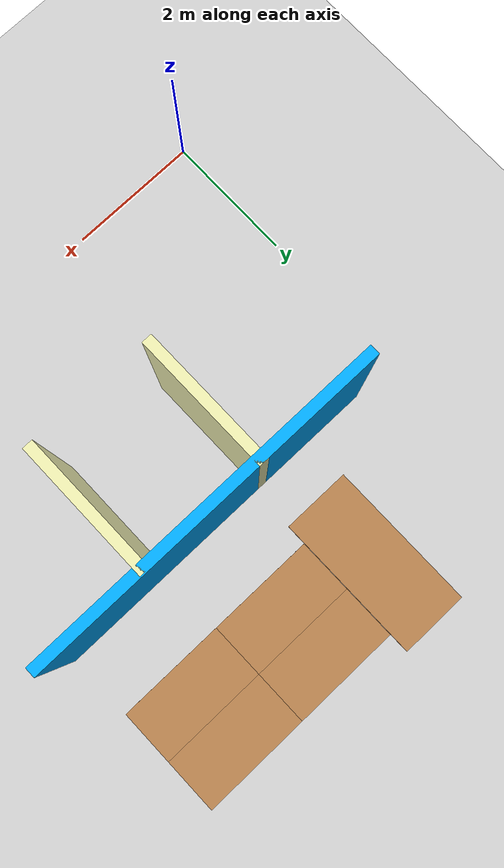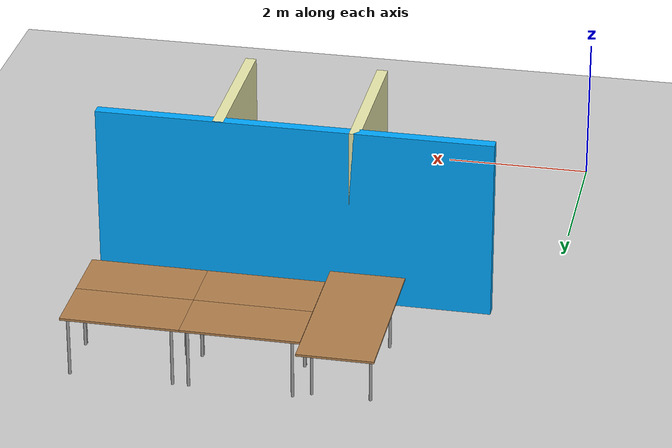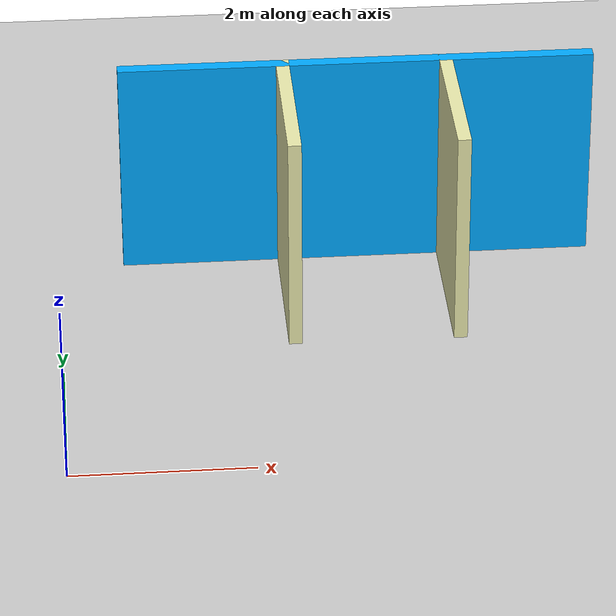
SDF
<sdf version="1.6">
 <world name="default">
  <model name="ground_plane">
   <static>1</static>
   <link name="link">
    <collision name="collision">
     <geometry><plane><normal>0 0 1</normal><size>100 100</size></plane></geometry>
     <surface><friction><ode><mu>100</mu><mu2>50</mu2></ode></friction></surface>
    </collision>
    <visual name="visual">
     <cast_shadows>0</cast_shadows>
     <geometry><plane><normal>0 0 1</normal><size>100 100</size></plane></geometry>
     <material>
      <script><uri>file://media/materials/scripts/gazebo.material</uri><name>Gazebo/Grey</name></script>
     </material>
    </visual>
   </link>
  </model>
  <model name="Building">
   <link name="Wall_123">
    <collision name="Wall_123_Collision">
     <geometry><box><size>2 0.15 2.5</size></box></geometry>
     <pose>0 0 1.25 0 -0 0</pose>
    </collision>
    <visual name="Wall_123_Visual">
     <pose>0 0 1.25 0 -0 0</pose>
     <geometry><box><size>2 0.15 2.5</size></box></geometry>
     <material>
      <script><uri>file://media/materials/scripts/gazebo.material</uri><name>Gazebo/Grey</name></script>
      <ambient>0.92 0.92 0.68 1</ambient>
     </material>
     <meta><layer>0</layer></meta>
    </visual>
    <pose>4.40848 3.39488 0 0 -0 1.5708</pose>
   </link>
   <link name="Wall_126">
    <collision name="Wall_126_Collision">
     <geometry><box><size>2 0.15 2.5</size></box></geometry>
     <pose>0 0 1.25 0 -0 0</pose>
    </collision>
    <visual name="Wall_126_Visual">
     <pose>0 0 1.25 0 -0 0</pose>
     <geometry><box><size>2 0.15 2.5</size></box></geometry>
     <material>
      <script><uri>file://media/materials/scripts/gazebo.material</uri><name>Gazebo/Grey</name></script>
      <ambient>0.92 0.92 0.68 1</ambient>
     </material>
     <meta><layer>0</layer></meta>
    </visual>
    <pose>2.573 3.41139 0 0 0 -1.5708</pose>
   </link>
   <link name="Wall_20">
    <collision name="Wall_20_Collision">
     <geometry><box><size>5.35 0.15 2.5</size></box></geometry>
     <pose>0 0 1.25 0 -0 0</pose>
    </collision>
    <visual name="Wall_20_Visual">
     <pose>0 0 1.25 0 -0 0</pose>
     <geometry><box><size>5.35 0.15 2.5</size></box></geometry>
     <material>
      <script><uri>file://media/materials/scripts/gazebo.material</uri><name>Gazebo/Grey</name></script>
      <ambient>0 0.666667 1 1</ambient>
     </material>
     <meta><layer>0</layer></meta>
    </visual>
    <pose>3.4 4.33639 0 0 -0 0</pose>
   </link>
   <static>1</static>
  </model>
  <model name="tablealt_0_clone_14">
   <link name="link">
    <inertial>
     <mass>1</mass>
     <inertia><ixx>1</ixx><ixy>0</ixy><ixz>0</ixz><iyy>1</iyy><iyz>0</iyz><izz>1</izz></inertia>
    </inertial>
    <visual name="back_right_leg">
     <pose>-0.68 -0.38 0.4 0 -0 0</pose>
     <geometry><cylinder><radius>0.02</radius><length>0.8</length></cylinder></geometry>
     <material>
      <script><uri>file://media/materials/scripts/gazebo.material</uri><name>Gazebo/Grey</name></script>
      <shader type="pixel"><normal_map>__default__</normal_map></shader>
      <ambient>0.3 0.3 0.3 1</ambient>
      <diffuse>0.7 0.7 0.7 1</diffuse>
      <specular>0.01 0.01 0.01 1</specular>
      <emissive>0 0 0 1</emissive>
     </material>
    </visual>
    <visual name="back_left_leg">
     <pose>-0.68 0.38 0.4 0 -0 0</pose>
     <geometry><cylinder><radius>0.02</radius><length>0.8</length></cylinder></geometry>
     <material>
      <script><uri>file://media/materials/scripts/gazebo.material</uri><name>Gazebo/Grey</name></script>
      <shader type="pixel"><normal_map>__default__</normal_map></shader>
      <ambient>0.3 0.3 0.3 1</ambient>
      <diffuse>0.7 0.7 0.7 1</diffuse>
      <specular>0.01 0.01 0.01 1</specular>
      <emissive>0 0 0 1</emissive>
     </material>
    </visual>
    <visual name="visual1">
     <pose>0 0 0.8 0 -0 0</pose>
     <geometry><box><size>1.57 0.8 0.03</size></box></geometry>
     <material>
      <script><uri>file://media/materials/scripts/gazebo.material</uri><name>Gazebo/Wood</name></script>
      <shader type="pixel"><normal_map>__default__</normal_map></shader>
      <ambient>0.92 0.92 0.68 1</ambient>
      <diffuse>1 1 1 1</diffuse>
      <specular>0.2 0.2 0.2 1</specular>
      <emissive>0 0 0 1</emissive>
     </material>
    </visual>
    <visual name="front_left_leg">
     <pose>0.68 0.38 0.4 0 -0 0</pose>
     <geometry><cylinder><radius>0.02</radius><length>0.8</length></cylinder></geometry>
     <material>
      <script><uri>file://media/materials/scripts/gazebo.material</uri><name>Gazebo/Grey</name></script>
      <shader type="pixel"><normal_map>__default__</normal_map></shader>
      <ambient>0.3 0.3 0.3 1</ambient>
      <diffuse>0.7 0.7 0.7 1</diffuse>
      <specular>0.01 0.01 0.01 1</specular>
      <emissive>0 0 0 1</emissive>
     </material>
    </visual>
    <visual name="front_right_leg">
     <pose>0.68 -0.38 0.4 0 -0 0</pose>
     <geometry><cylinder><radius>0.02</radius><length>0.8</length></cylinder></geometry>
     <material>
      <script><uri>file://media/materials/scripts/gazebo.material</uri><name>Gazebo/Grey</name></script>
      <shader type="pixel"><normal_map>__default__</normal_map></shader>
      <ambient>0.3 0.3 0.3 1</ambient>
      <diffuse>0.7 0.7 0.7 1</diffuse>
      <specular>0.01 0.01 0.01 1</specular>
      <emissive>0 0 0 1</emissive>
     </material>
    </visual>
    <collision name="front_right_leg">
     <pose>0.68 -0.38 0.4 0 -0 0</pose>
     <geometry><cylinder><radius>0.02</radius><length>0.8</length></cylinder></geometry>
     <surface>
      <friction>
       <ode><mu>1</mu><mu2>1</mu2><fdir1>0 0 0</fdir1><slip1>0</slip1><slip2>0</slip2></ode>
       <torsional>
        <coefficient>1</coefficient>
        <patch_radius>0</patch_radius>
        <surface_radius>0</surface_radius>
        <use_patch_radius>1</use_patch_radius>
        <ode><slip>0</slip></ode>
       </torsional>
      </friction>
      <bounce><restitution_coefficient>0</restitution_coefficient><threshold>1e+06</threshold></bounce>
      <contact>
       <collide_without_contact>0</collide_without_contact>
       <collide_without_contact_bitmask>1</collide_without_contact_bitmask>
       <collide_bitmask>1</collide_bitmask>
       <ode>
        <soft_cfm>0</soft_cfm>
        <soft_erp>0.2</soft_erp>
        <kp>1e+13</kp>
        <kd>1</kd>
        <max_vel>0.01</max_vel>
        <min_depth>0</min_depth>
       </ode>
       <bullet>
        <split_impulse>1</split_impulse>
        <split_impulse_penetration_threshold>-0.01</split_impulse_penetration_threshold>
        <soft_cfm>0</soft_cfm>
        <soft_erp>0.2</soft_erp>
        <kp>1e+13</kp>
        <kd>1</kd>
       </bullet>
      </contact>
     </surface>
    </collision>
    <collision name="surface">
     <pose>0 0 0.8 0 -0 0</pose>
     <geometry><box><size>1.5 0.8 0.03</size></box></geometry>
     <surface>
      <friction>
       <ode><mu>0.6</mu><mu2>0.6</mu2><fdir1>0 0 0</fdir1><slip1>0</slip1><slip2>0</slip2></ode>
       <torsional>
        <coefficient>1</coefficient>
        <patch_radius>0</patch_radius>
        <surface_radius>0</surface_radius>
        <use_patch_radius>1</use_patch_radius>
        <ode><slip>0</slip></ode>
       </torsional>
      </friction>
      <bounce><restitution_coefficient>0</restitution_coefficient><threshold>1e+06</threshold></bounce>
      <contact>
       <collide_without_contact>0</collide_without_contact>
       <collide_without_contact_bitmask>1</collide_without_contact_bitmask>
       <collide_bitmask>1</collide_bitmask>
       <ode>
        <soft_cfm>0</soft_cfm>
        <soft_erp>0.2</soft_erp>
        <kp>1e+13</kp>
        <kd>1</kd>
        <max_vel>0.01</max_vel>
        <min_depth>0</min_depth>
       </ode>
       <bullet>
        <split_impulse>1</split_impulse>
        <split_impulse_penetration_threshold>-0.01</split_impulse_penetration_threshold>
        <soft_cfm>0</soft_cfm>
        <soft_erp>0.2</soft_erp>
        <kp>1e+13</kp>
        <kd>1</kd>
       </bullet>
      </contact>
     </surface>
    </collision>
    <collision name="front_left_leg">
     <pose>0.68 0.38 0.4 0 -0 0</pose>
     <geometry><cylinder><radius>0.02</radius><length>0.8</length></cylinder></geometry>
     <surface>
      <friction>
       <ode><mu>1</mu><mu2>1</mu2><fdir1>0 0 0</fdir1><slip1>0</slip1><slip2>0</slip2></ode>
       <torsional>
        <coefficient>1</coefficient>
        <patch_radius>0</patch_radius>
        <surface_radius>0</surface_radius>
        <use_patch_radius>1</use_patch_radius>
        <ode><slip>0</slip></ode>
       </torsional>
      </friction>
      <bounce><restitution_coefficient>0</restitution_coefficient><threshold>1e+06</threshold></bounce>
      <contact>
       <collide_without_contact>0</collide_without_contact>
       <collide_without_contact_bitmask>1</collide_without_contact_bitmask>
       <collide_bitmask>1</collide_bitmask>
       <ode>
        <soft_cfm>0</soft_cfm>
        <soft_erp>0.2</soft_erp>
        <kp>1e+13</kp>
        <kd>1</kd>
        <max_vel>0.01</max_vel>
        <min_depth>0</min_depth>
       </ode>
       <bullet>
        <split_impulse>1</split_impulse>
        <split_impulse_penetration_threshold>-0.01</split_impulse_penetration_threshold>
        <soft_cfm>0</soft_cfm>
        <soft_erp>0.2</soft_erp>
        <kp>1e+13</kp>
        <kd>1</kd>
       </bullet>
      </contact>
     </surface>
    </collision>
    <collision name="back_left_leg">
     <pose>-0.68 0.38 0.4 0 -0 0</pose>
     <geometry><cylinder><radius>0.02</radius><length>0.8</length></cylinder></geometry>
     <surface>
      <friction>
       <ode><mu>1</mu><mu2>1</mu2><fdir1>0 0 0</fdir1><slip1>0</slip1><slip2>0</slip2></ode>
       <torsional>
        <coefficient>1</coefficient>
        <patch_radius>0</patch_radius>
        <surface_radius>0</surface_radius>
        <use_patch_radius>1</use_patch_radius>
        <ode><slip>0</slip></ode>
       </torsional>
      </friction>
      <bounce><restitution_coefficient>0</restitution_coefficient><threshold>1e+06</threshold></bounce>
      <contact>
       <collide_without_contact>0</collide_without_contact>
       <collide_without_contact_bitmask>1</collide_without_contact_bitmask>
       <collide_bitmask>1</collide_bitmask>
       <ode>
        <soft_cfm>0</soft_cfm>
        <soft_erp>0.2</soft_erp>
        <kp>1e+13</kp>
        <kd>1</kd>
        <max_vel>0.01</max_vel>
        <min_depth>0</min_depth>
       </ode>
       <bullet>
        <split_impulse>1</split_impulse>
        <split_impulse_penetration_threshold>-0.01</split_impulse_penetration_threshold>
        <soft_cfm>0</soft_cfm>
        <soft_erp>0.2</soft_erp>
        <kp>1e+13</kp>
        <kd>1</kd>
       </bullet>
      </contact>
     </surface>
    </collision>
    <collision name="back_right_leg">
     <pose>-0.68 -0.38 0.4 0 -0 0</pose>
     <geometry><cylinder><radius>0.02</radius><length>0.8</length></cylinder></geometry>
     <surface>
      <friction>
       <ode><mu>1</mu><mu2>1</mu2><fdir1>0 0 0</fdir1><slip1>0</slip1><slip2>0</slip2></ode>
       <torsional>
        <coefficient>1</coefficient>
        <patch_radius>0</patch_radius>
        <surface_radius>0</surface_radius>
        <use_patch_radius>1</use_patch_radius>
        <ode><slip>0</slip></ode>
       </torsional>
      </friction>
      <bounce><restitution_coefficient>0</restitution_coefficient><threshold>1e+06</threshold></bounce>
      <contact>
       <collide_without_contact>0</collide_without_contact>
       <collide_without_contact_bitmask>1</collide_without_contact_bitmask>
       <collide_bitmask>1</collide_bitmask>
       <ode>
        <soft_cfm>0</soft_cfm>
        <soft_erp>0.2</soft_erp>
        <kp>1e+13</kp>
        <kd>1</kd>
        <max_vel>0.01</max_vel>
        <min_depth>0</min_depth>
       </ode>
       <bullet>
        <split_impulse>1</split_impulse>
        <split_impulse_penetration_threshold>-0.01</split_impulse_penetration_threshold>
        <soft_cfm>0</soft_cfm>
        <soft_erp>0.2</soft_erp>
        <kp>1e+13</kp>
        <kd>1</kd>
       </bullet>
      </contact>
     </surface>
    </collision>
   </link>
   <static>1</static>
   <pose>3.55 6.6 0 0 -0 0</pose>
  </model>
  <model name="tablealt_0_clone_15">
   <link name="link">
    <inertial>
     <mass>1</mass>
     <inertia><ixx>1</ixx><ixy>0</ixy><ixz>0</ixz><iyy>1</iyy><iyz>0</iyz><izz>1</izz></inertia>
    </inertial>
    <visual name="back_right_leg">
     <pose>-0.68 -0.38 0.4 0 -0 0</pose>
     <geometry><cylinder><radius>0.02</radius><length>0.8</length></cylinder></geometry>
     <material>
      <script><uri>file://media/materials/scripts/gazebo.material</uri><name>Gazebo/Grey</name></script>
      <shader type="pixel"><normal_map>__default__</normal_map></shader>
      <ambient>0.3 0.3 0.3 1</ambient>
      <diffuse>0.7 0.7 0.7 1</diffuse>
      <specular>0.01 0.01 0.01 1</specular>
      <emissive>0 0 0 1</emissive>
     </material>
    </visual>
    <visual name="back_left_leg">
     <pose>-0.68 0.38 0.4 0 -0 0</pose>
     <geometry><cylinder><radius>0.02</radius><length>0.8</length></cylinder></geometry>
     <material>
      <script><uri>file://media/materials/scripts/gazebo.material</uri><name>Gazebo/Grey</name></script>
      <shader type="pixel"><normal_map>__default__</normal_map></shader>
      <ambient>0.3 0.3 0.3 1</ambient>
      <diffuse>0.7 0.7 0.7 1</diffuse>
      <specular>0.01 0.01 0.01 1</specular>
      <emissive>0 0 0 1</emissive>
     </material>
    </visual>
    <visual name="visual1">
     <pose>0 0 0.8 0 -0 0</pose>
     <geometry><box><size>1.57 0.8 0.03</size></box></geometry>
     <material>
      <script><uri>file://media/materials/scripts/gazebo.material</uri><name>Gazebo/Wood</name></script>
      <shader type="pixel"><normal_map>__default__</normal_map></shader>
      <ambient>0.92 0.92 0.68 1</ambient>
      <diffuse>1 1 1 1</diffuse>
      <specular>0.2 0.2 0.2 1</specular>
      <emissive>0 0 0 1</emissive>
     </material>
    </visual>
    <visual name="front_left_leg">
     <pose>0.68 0.38 0.4 0 -0 0</pose>
     <geometry><cylinder><radius>0.02</radius><length>0.8</length></cylinder></geometry>
     <material>
      <script><uri>file://media/materials/scripts/gazebo.material</uri><name>Gazebo/Grey</name></script>
      <shader type="pixel"><normal_map>__default__</normal_map></shader>
      <ambient>0.3 0.3 0.3 1</ambient>
      <diffuse>0.7 0.7 0.7 1</diffuse>
      <specular>0.01 0.01 0.01 1</specular>
      <emissive>0 0 0 1</emissive>
     </material>
    </visual>
    <visual name="front_right_leg">
     <pose>0.68 -0.38 0.4 0 -0 0</pose>
     <geometry><cylinder><radius>0.02</radius><length>0.8</length></cylinder></geometry>
     <material>
      <script><uri>file://media/materials/scripts/gazebo.material</uri><name>Gazebo/Grey</name></script>
      <shader type="pixel"><normal_map>__default__</normal_map></shader>
      <ambient>0.3 0.3 0.3 1</ambient>
      <diffuse>0.7 0.7 0.7 1</diffuse>
      <specular>0.01 0.01 0.01 1</specular>
      <emissive>0 0 0 1</emissive>
     </material>
    </visual>
    <collision name="front_right_leg">
     <pose>0.68 -0.38 0.4 0 -0 0</pose>
     <geometry><cylinder><radius>0.02</radius><length>0.8</length></cylinder></geometry>
     <surface>
      <friction>
       <ode><mu>1</mu><mu2>1</mu2><fdir1>0 0 0</fdir1><slip1>0</slip1><slip2>0</slip2></ode>
       <torsional>
        <coefficient>1</coefficient>
        <patch_radius>0</patch_radius>
        <surface_radius>0</surface_radius>
        <use_patch_radius>1</use_patch_radius>
        <ode><slip>0</slip></ode>
       </torsional>
      </friction>
      <bounce><restitution_coefficient>0</restitution_coefficient><threshold>1e+06</threshold></bounce>
      <contact>
       <collide_without_contact>0</collide_without_contact>
       <collide_without_contact_bitmask>1</collide_without_contact_bitmask>
       <collide_bitmask>1</collide_bitmask>
       <ode>
        <soft_cfm>0</soft_cfm>
        <soft_erp>0.2</soft_erp>
        <kp>1e+13</kp>
        <kd>1</kd>
        <max_vel>0.01</max_vel>
        <min_depth>0</min_depth>
       </ode>
       <bullet>
        <split_impulse>1</split_impulse>
        <split_impulse_penetration_threshold>-0.01</split_impulse_penetration_threshold>
        <soft_cfm>0</soft_cfm>
        <soft_erp>0.2</soft_erp>
        <kp>1e+13</kp>
        <kd>1</kd>
       </bullet>
      </contact>
     </surface>
    </collision>
    <collision name="surface">
     <pose>0 0 0.8 0 -0 0</pose>
     <geometry><box><size>1.5 0.8 0.03</size></box></geometry>
     <surface>
      <friction>
       <ode><mu>0.6</mu><mu2>0.6</mu2><fdir1>0 0 0</fdir1><slip1>0</slip1><slip2>0</slip2></ode>
       <torsional>
        <coefficient>1</coefficient>
        <patch_radius>0</patch_radius>
        <surface_radius>0</surface_radius>
        <use_patch_radius>1</use_patch_radius>
        <ode><slip>0</slip></ode>
       </torsional>
      </friction>
      <bounce><restitution_coefficient>0</restitution_coefficient><threshold>1e+06</threshold></bounce>
      <contact>
       <collide_without_contact>0</collide_without_contact>
       <collide_without_contact_bitmask>1</collide_without_contact_bitmask>
       <collide_bitmask>1</collide_bitmask>
       <ode>
        <soft_cfm>0</soft_cfm>
        <soft_erp>0.2</soft_erp>
        <kp>1e+13</kp>
        <kd>1</kd>
        <max_vel>0.01</max_vel>
        <min_depth>0</min_depth>
       </ode>
       <bullet>
        <split_impulse>1</split_impulse>
        <split_impulse_penetration_threshold>-0.01</split_impulse_penetration_threshold>
        <soft_cfm>0</soft_cfm>
        <soft_erp>0.2</soft_erp>
        <kp>1e+13</kp>
        <kd>1</kd>
       </bullet>
      </contact>
     </surface>
    </collision>
    <collision name="front_left_leg">
     <pose>0.68 0.38 0.4 0 -0 0</pose>
     <geometry><cylinder><radius>0.02</radius><length>0.8</length></cylinder></geometry>
     <surface>
      <friction>
       <ode><mu>1</mu><mu2>1</mu2><fdir1>0 0 0</fdir1><slip1>0</slip1><slip2>0</slip2></ode>
       <torsional>
        <coefficient>1</coefficient>
        <patch_radius>0</patch_radius>
        <surface_radius>0</surface_radius>
        <use_patch_radius>1</use_patch_radius>
        <ode><slip>0</slip></ode>
       </torsional>
      </friction>
      <bounce><restitution_coefficient>0</restitution_coefficient><threshold>1e+06</threshold></bounce>
      <contact>
       <collide_without_contact>0</collide_without_contact>
       <collide_without_contact_bitmask>1</collide_without_contact_bitmask>
       <collide_bitmask>1</collide_bitmask>
       <ode>
        <soft_cfm>0</soft_cfm>
        <soft_erp>0.2</soft_erp>
        <kp>1e+13</kp>
        <kd>1</kd>
        <max_vel>0.01</max_vel>
        <min_depth>0</min_depth>
       </ode>
       <bullet>
        <split_impulse>1</split_impulse>
        <split_impulse_penetration_threshold>-0.01</split_impulse_penetration_threshold>
        <soft_cfm>0</soft_cfm>
        <soft_erp>0.2</soft_erp>
        <kp>1e+13</kp>
        <kd>1</kd>
       </bullet>
      </contact>
     </surface>
    </collision>
    <collision name="back_left_leg">
     <pose>-0.68 0.38 0.4 0 -0 0</pose>
     <geometry><cylinder><radius>0.02</radius><length>0.8</length></cylinder></geometry>
     <surface>
      <friction>
       <ode><mu>1</mu><mu2>1</mu2><fdir1>0 0 0</fdir1><slip1>0</slip1><slip2>0</slip2></ode>
       <torsional>
        <coefficient>1</coefficient>
        <patch_radius>0</patch_radius>
        <surface_radius>0</surface_radius>
        <use_patch_radius>1</use_patch_radius>
        <ode><slip>0</slip></ode>
       </torsional>
      </friction>
      <bounce><restitution_coefficient>0</restitution_coefficient><threshold>1e+06</threshold></bounce>
      <contact>
       <collide_without_contact>0</collide_without_contact>
       <collide_without_contact_bitmask>1</collide_without_contact_bitmask>
       <collide_bitmask>1</collide_bitmask>
       <ode>
        <soft_cfm>0</soft_cfm>
        <soft_erp>0.2</soft_erp>
        <kp>1e+13</kp>
        <kd>1</kd>
        <max_vel>0.01</max_vel>
        <min_depth>0</min_depth>
       </ode>
       <bullet>
        <split_impulse>1</split_impulse>
        <split_impulse_penetration_threshold>-0.01</split_impulse_penetration_threshold>
        <soft_cfm>0</soft_cfm>
        <soft_erp>0.2</soft_erp>
        <kp>1e+13</kp>
        <kd>1</kd>
       </bullet>
      </contact>
     </surface>
    </collision>
    <collision name="back_right_leg">
     <pose>-0.68 -0.38 0.4 0 -0 0</pose>
     <geometry><cylinder><radius>0.02</radius><length>0.8</length></cylinder></geometry>
     <surface>
      <friction>
       <ode><mu>1</mu><mu2>1</mu2><fdir1>0 0 0</fdir1><slip1>0</slip1><slip2>0</slip2></ode>
       <torsional>
        <coefficient>1</coefficient>
        <patch_radius>0</patch_radius>
        <surface_radius>0</surface_radius>
        <use_patch_radius>1</use_patch_radius>
        <ode><slip>0</slip></ode>
       </torsional>
      </friction>
      <bounce><restitution_coefficient>0</restitution_coefficient><threshold>1e+06</threshold></bounce>
      <contact>
       <collide_without_contact>0</collide_without_contact>
       <collide_without_contact_bitmask>1</collide_without_contact_bitmask>
       <collide_bitmask>1</collide_bitmask>
       <ode>
        <soft_cfm>0</soft_cfm>
        <soft_erp>0.2</soft_erp>
        <kp>1e+13</kp>
        <kd>1</kd>
        <max_vel>0.01</max_vel>
        <min_depth>0</min_depth>
       </ode>
       <bullet>
        <split_impulse>1</split_impulse>
        <split_impulse_penetration_threshold>-0.01</split_impulse_penetration_threshold>
        <soft_cfm>0</soft_cfm>
        <soft_erp>0.2</soft_erp>
        <kp>1e+13</kp>
        <kd>1</kd>
       </bullet>
      </contact>
     </surface>
    </collision>
   </link>
   <static>1</static>
   <pose>5.12 6.6 0 0 -0 0</pose>
  </model>
  <model name="tablealt_0_clone_16">
   <link name="link">
    <inertial>
     <mass>1</mass>
     <inertia><ixx>1</ixx><ixy>0</ixy><ixz>0</ixz><iyy>1</iyy><iyz>0</iyz><izz>1</izz></inertia>
    </inertial>
    <visual name="back_right_leg">
     <pose>-0.68 -0.38 0.4 0 -0 0</pose>
     <geometry><cylinder><radius>0.02</radius><length>0.8</length></cylinder></geometry>
     <material>
      <script><uri>file://media/materials/scripts/gazebo.material</uri><name>Gazebo/Grey</name></script>
      <shader type="pixel"><normal_map>__default__</normal_map></shader>
      <ambient>0.3 0.3 0.3 1</ambient>
      <diffuse>0.7 0.7 0.7 1</diffuse>
      <specular>0.01 0.01 0.01 1</specular>
      <emissive>0 0 0 1</emissive>
     </material>
    </visual>
    <visual name="back_left_leg">
     <pose>-0.68 0.38 0.4 0 -0 0</pose>
     <geometry><cylinder><radius>0.02</radius><length>0.8</length></cylinder></geometry>
     <material>
      <script><uri>file://media/materials/scripts/gazebo.material</uri><name>Gazebo/Grey</name></script>
      <shader type="pixel"><normal_map>__default__</normal_map></shader>
      <ambient>0.3 0.3 0.3 1</ambient>
      <diffuse>0.7 0.7 0.7 1</diffuse>
      <specular>0.01 0.01 0.01 1</specular>
      <emissive>0 0 0 1</emissive>
     </material>
    </visual>
    <visual name="visual1">
     <pose>0 0 0.8 0 -0 0</pose>
     <geometry><box><size>1.57 0.8 0.03</size></box></geometry>
     <material>
      <script><uri>file://media/materials/scripts/gazebo.material</uri><name>Gazebo/Wood</name></script>
      <shader type="pixel"><normal_map>__default__</normal_map></shader>
      <ambient>0.92 0.92 0.68 1</ambient>
      <diffuse>1 1 1 1</diffuse>
      <specular>0.2 0.2 0.2 1</specular>
      <emissive>0 0 0 1</emissive>
     </material>
    </visual>
    <visual name="front_left_leg">
     <pose>0.68 0.38 0.4 0 -0 0</pose>
     <geometry><cylinder><radius>0.02</radius><length>0.8</length></cylinder></geometry>
     <material>
      <script><uri>file://media/materials/scripts/gazebo.material</uri><name>Gazebo/Grey</name></script>
      <shader type="pixel"><normal_map>__default__</normal_map></shader>
      <ambient>0.3 0.3 0.3 1</ambient>
      <diffuse>0.7 0.7 0.7 1</diffuse>
      <specular>0.01 0.01 0.01 1</specular>
      <emissive>0 0 0 1</emissive>
     </material>
    </visual>
    <visual name="front_right_leg">
     <pose>0.68 -0.38 0.4 0 -0 0</pose>
     <geometry><cylinder><radius>0.02</radius><length>0.8</length></cylinder></geometry>
     <material>
      <script><uri>file://media/materials/scripts/gazebo.material</uri><name>Gazebo/Grey</name></script>
      <shader type="pixel"><normal_map>__default__</normal_map></shader>
      <ambient>0.3 0.3 0.3 1</ambient>
      <diffuse>0.7 0.7 0.7 1</diffuse>
      <specular>0.01 0.01 0.01 1</specular>
      <emissive>0 0 0 1</emissive>
     </material>
    </visual>
    <collision name="front_right_leg">
     <pose>0.68 -0.38 0.4 0 -0 0</pose>
     <geometry><cylinder><radius>0.02</radius><length>0.8</length></cylinder></geometry>
     <surface>
      <friction>
       <ode><mu>1</mu><mu2>1</mu2><fdir1>0 0 0</fdir1><slip1>0</slip1><slip2>0</slip2></ode>
       <torsional>
        <coefficient>1</coefficient>
        <patch_radius>0</patch_radius>
        <surface_radius>0</surface_radius>
        <use_patch_radius>1</use_patch_radius>
        <ode><slip>0</slip></ode>
       </torsional>
      </friction>
      <bounce><restitution_coefficient>0</restitution_coefficient><threshold>1e+06</threshold></bounce>
      <contact>
       <collide_without_contact>0</collide_without_contact>
       <collide_without_contact_bitmask>1</collide_without_contact_bitmask>
       <collide_bitmask>1</collide_bitmask>
       <ode>
        <soft_cfm>0</soft_cfm>
        <soft_erp>0.2</soft_erp>
        <kp>1e+13</kp>
        <kd>1</kd>
        <max_vel>0.01</max_vel>
        <min_depth>0</min_depth>
       </ode>
       <bullet>
        <split_impulse>1</split_impulse>
        <split_impulse_penetration_threshold>-0.01</split_impulse_penetration_threshold>
        <soft_cfm>0</soft_cfm>
        <soft_erp>0.2</soft_erp>
        <kp>1e+13</kp>
        <kd>1</kd>
       </bullet>
      </contact>
     </surface>
    </collision>
    <collision name="surface">
     <pose>0 0 0.8 0 -0 0</pose>
     <geometry><box><size>1.5 0.8 0.03</size></box></geometry>
     <surface>
      <friction>
       <ode><mu>0.6</mu><mu2>0.6</mu2><fdir1>0 0 0</fdir1><slip1>0</slip1><slip2>0</slip2></ode>
       <torsional>
        <coefficient>1</coefficient>
        <patch_radius>0</patch_radius>
        <surface_radius>0</surface_radius>
        <use_patch_radius>1</use_patch_radius>
        <ode><slip>0</slip></ode>
       </torsional>
      </friction>
      <bounce><restitution_coefficient>0</restitution_coefficient><threshold>1e+06</threshold></bounce>
      <contact>
       <collide_without_contact>0</collide_without_contact>
       <collide_without_contact_bitmask>1</collide_without_contact_bitmask>
       <collide_bitmask>1</collide_bitmask>
       <ode>
        <soft_cfm>0</soft_cfm>
        <soft_erp>0.2</soft_erp>
        <kp>1e+13</kp>
        <kd>1</kd>
        <max_vel>0.01</max_vel>
        <min_depth>0</min_depth>
       </ode>
       <bullet>
        <split_impulse>1</split_impulse>
        <split_impulse_penetration_threshold>-0.01</split_impulse_penetration_threshold>
        <soft_cfm>0</soft_cfm>
        <soft_erp>0.2</soft_erp>
        <kp>1e+13</kp>
        <kd>1</kd>
       </bullet>
      </contact>
     </surface>
    </collision>
    <collision name="front_left_leg">
     <pose>0.68 0.38 0.4 0 -0 0</pose>
     <geometry><cylinder><radius>0.02</radius><length>0.8</length></cylinder></geometry>
     <surface>
      <friction>
       <ode><mu>1</mu><mu2>1</mu2><fdir1>0 0 0</fdir1><slip1>0</slip1><slip2>0</slip2></ode>
       <torsional>
        <coefficient>1</coefficient>
        <patch_radius>0</patch_radius>
        <surface_radius>0</surface_radius>
        <use_patch_radius>1</use_patch_radius>
        <ode><slip>0</slip></ode>
       </torsional>
      </friction>
      <bounce><restitution_coefficient>0</restitution_coefficient><threshold>1e+06</threshold></bounce>
      <contact>
       <collide_without_contact>0</collide_without_contact>
       <collide_without_contact_bitmask>1</collide_without_contact_bitmask>
       <collide_bitmask>1</collide_bitmask>
       <ode>
        <soft_cfm>0</soft_cfm>
        <soft_erp>0.2</soft_erp>
        <kp>1e+13</kp>
        <kd>1</kd>
        <max_vel>0.01</max_vel>
        <min_depth>0</min_depth>
       </ode>
       <bullet>
        <split_impulse>1</split_impulse>
        <split_impulse_penetration_threshold>-0.01</split_impulse_penetration_threshold>
        <soft_cfm>0</soft_cfm>
        <soft_erp>0.2</soft_erp>
        <kp>1e+13</kp>
        <kd>1</kd>
       </bullet>
      </contact>
     </surface>
    </collision>
    <collision name="back_left_leg">
     <pose>-0.68 0.38 0.4 0 -0 0</pose>
     <geometry><cylinder><radius>0.02</radius><length>0.8</length></cylinder></geometry>
     <surface>
      <friction>
       <ode><mu>1</mu><mu2>1</mu2><fdir1>0 0 0</fdir1><slip1>0</slip1><slip2>0</slip2></ode>
       <torsional>
        <coefficient>1</coefficient>
        <patch_radius>0</patch_radius>
        <surface_radius>0</surface_radius>
        <use_patch_radius>1</use_patch_radius>
        <ode><slip>0</slip></ode>
       </torsional>
      </friction>
      <bounce><restitution_coefficient>0</restitution_coefficient><threshold>1e+06</threshold></bounce>
      <contact>
       <collide_without_contact>0</collide_without_contact>
       <collide_without_contact_bitmask>1</collide_without_contact_bitmask>
       <collide_bitmask>1</collide_bitmask>
       <ode>
        <soft_cfm>0</soft_cfm>
        <soft_erp>0.2</soft_erp>
        <kp>1e+13</kp>
        <kd>1</kd>
        <max_vel>0.01</max_vel>
        <min_depth>0</min_depth>
       </ode>
       <bullet>
        <split_impulse>1</split_impulse>
        <split_impulse_penetration_threshold>-0.01</split_impulse_penetration_threshold>
        <soft_cfm>0</soft_cfm>
        <soft_erp>0.2</soft_erp>
        <kp>1e+13</kp>
        <kd>1</kd>
       </bullet>
      </contact>
     </surface>
    </collision>
    <collision name="back_right_leg">
     <pose>-0.68 -0.38 0.4 0 -0 0</pose>
     <geometry><cylinder><radius>0.02</radius><length>0.8</length></cylinder></geometry>
     <surface>
      <friction>
       <ode><mu>1</mu><mu2>1</mu2><fdir1>0 0 0</fdir1><slip1>0</slip1><slip2>0</slip2></ode>
       <torsional>
        <coefficient>1</coefficient>
        <patch_radius>0</patch_radius>
        <surface_radius>0</surface_radius>
        <use_patch_radius>1</use_patch_radius>
        <ode><slip>0</slip></ode>
       </torsional>
      </friction>
      <bounce><restitution_coefficient>0</restitution_coefficient><threshold>1e+06</threshold></bounce>
      <contact>
       <collide_without_contact>0</collide_without_contact>
       <collide_without_contact_bitmask>1</collide_without_contact_bitmask>
       <collide_bitmask>1</collide_bitmask>
       <ode>
        <soft_cfm>0</soft_cfm>
        <soft_erp>0.2</soft_erp>
        <kp>1e+13</kp>
        <kd>1</kd>
        <max_vel>0.01</max_vel>
        <min_depth>0</min_depth>
       </ode>
       <bullet>
        <split_impulse>1</split_impulse>
        <split_impulse_penetration_threshold>-0.01</split_impulse_penetration_threshold>
        <soft_cfm>0</soft_cfm>
        <soft_erp>0.2</soft_erp>
        <kp>1e+13</kp>
        <kd>1</kd>
       </bullet>
      </contact>
     </surface>
    </collision>
   </link>
   <static>1</static>
   <pose>3.55 5.8 0 0 -0 0</pose>
  </model>
  <model name="tablealt_0_clone_17">
   <link name="link">
    <inertial>
     <mass>1</mass>
     <inertia><ixx>1</ixx><ixy>0</ixy><ixz>0</ixz><iyy>1</iyy><iyz>0</iyz><izz>1</izz></inertia>
    </inertial>
    <visual name="back_right_leg">
     <pose>-0.68 -0.38 0.4 0 -0 0</pose>
     <geometry><cylinder><radius>0.02</radius><length>0.8</length></cylinder></geometry>
     <material>
      <script><uri>file://media/materials/scripts/gazebo.material</uri><name>Gazebo/Grey</name></script>
      <shader type="pixel"><normal_map>__default__</normal_map></shader>
      <ambient>0.3 0.3 0.3 1</ambient>
      <diffuse>0.7 0.7 0.7 1</diffuse>
      <specular>0.01 0.01 0.01 1</specular>
      <emissive>0 0 0 1</emissive>
     </material>
    </visual>
    <visual name="back_left_leg">
     <pose>-0.68 0.38 0.4 0 -0 0</pose>
     <geometry><cylinder><radius>0.02</radius><length>0.8</length></cylinder></geometry>
     <material>
      <script><uri>file://media/materials/scripts/gazebo.material</uri><name>Gazebo/Grey</name></script>
      <shader type="pixel"><normal_map>__default__</normal_map></shader>
      <ambient>0.3 0.3 0.3 1</ambient>
      <diffuse>0.7 0.7 0.7 1</diffuse>
      <specular>0.01 0.01 0.01 1</specular>
      <emissive>0 0 0 1</emissive>
     </material>
    </visual>
    <visual name="visual1">
     <pose>0 0 0.8 0 -0 0</pose>
     <geometry><box><size>1.57 0.8 0.03</size></box></geometry>
     <material>
      <script><uri>file://media/materials/scripts/gazebo.material</uri><name>Gazebo/Wood</name></script>
      <shader type="pixel"><normal_map>__default__</normal_map></shader>
      <ambient>0.92 0.92 0.68 1</ambient>
      <diffuse>1 1 1 1</diffuse>
      <specular>0.2 0.2 0.2 1</specular>
      <emissive>0 0 0 1</emissive>
     </material>
    </visual>
    <visual name="front_left_leg">
     <pose>0.68 0.38 0.4 0 -0 0</pose>
     <geometry><cylinder><radius>0.02</radius><length>0.8</length></cylinder></geometry>
     <material>
      <script><uri>file://media/materials/scripts/gazebo.material</uri><name>Gazebo/Grey</name></script>
      <shader type="pixel"><normal_map>__default__</normal_map></shader>
      <ambient>0.3 0.3 0.3 1</ambient>
      <diffuse>0.7 0.7 0.7 1</diffuse>
      <specular>0.01 0.01 0.01 1</specular>
      <emissive>0 0 0 1</emissive>
     </material>
    </visual>
    <visual name="front_right_leg">
     <pose>0.68 -0.38 0.4 0 -0 0</pose>
     <geometry><cylinder><radius>0.02</radius><length>0.8</length></cylinder></geometry>
     <material>
      <script><uri>file://media/materials/scripts/gazebo.material</uri><name>Gazebo/Grey</name></script>
      <shader type="pixel"><normal_map>__default__</normal_map></shader>
      <ambient>0.3 0.3 0.3 1</ambient>
      <diffuse>0.7 0.7 0.7 1</diffuse>
      <specular>0.01 0.01 0.01 1</specular>
      <emissive>0 0 0 1</emissive>
     </material>
    </visual>
    <collision name="front_right_leg">
     <pose>0.68 -0.38 0.4 0 -0 0</pose>
     <geometry><cylinder><radius>0.02</radius><length>0.8</length></cylinder></geometry>
     <surface>
      <friction>
       <ode><mu>1</mu><mu2>1</mu2><fdir1>0 0 0</fdir1><slip1>0</slip1><slip2>0</slip2></ode>
       <torsional>
        <coefficient>1</coefficient>
        <patch_radius>0</patch_radius>
        <surface_radius>0</surface_radius>
        <use_patch_radius>1</use_patch_radius>
        <ode><slip>0</slip></ode>
       </torsional>
      </friction>
      <bounce><restitution_coefficient>0</restitution_coefficient><threshold>1e+06</threshold></bounce>
      <contact>
       <collide_without_contact>0</collide_without_contact>
       <collide_without_contact_bitmask>1</collide_without_contact_bitmask>
       <collide_bitmask>1</collide_bitmask>
       <ode>
        <soft_cfm>0</soft_cfm>
        <soft_erp>0.2</soft_erp>
        <kp>1e+13</kp>
        <kd>1</kd>
        <max_vel>0.01</max_vel>
        <min_depth>0</min_depth>
       </ode>
       <bullet>
        <split_impulse>1</split_impulse>
        <split_impulse_penetration_threshold>-0.01</split_impulse_penetration_threshold>
        <soft_cfm>0</soft_cfm>
        <soft_erp>0.2</soft_erp>
        <kp>1e+13</kp>
        <kd>1</kd>
       </bullet>
      </contact>
     </surface>
    </collision>
    <collision name="surface">
     <pose>0 0 0.8 0 -0 0</pose>
     <geometry><box><size>1.5 0.8 0.03</size></box></geometry>
     <surface>
      <friction>
       <ode><mu>0.6</mu><mu2>0.6</mu2><fdir1>0 0 0</fdir1><slip1>0</slip1><slip2>0</slip2></ode>
       <torsional>
        <coefficient>1</coefficient>
        <patch_radius>0</patch_radius>
        <surface_radius>0</surface_radius>
        <use_patch_radius>1</use_patch_radius>
        <ode><slip>0</slip></ode>
       </torsional>
      </friction>
      <bounce><restitution_coefficient>0</restitution_coefficient><threshold>1e+06</threshold></bounce>
      <contact>
       <collide_without_contact>0</collide_without_contact>
       <collide_without_contact_bitmask>1</collide_without_contact_bitmask>
       <collide_bitmask>1</collide_bitmask>
       <ode>
        <soft_cfm>0</soft_cfm>
        <soft_erp>0.2</soft_erp>
        <kp>1e+13</kp>
        <kd>1</kd>
        <max_vel>0.01</max_vel>
        <min_depth>0</min_depth>
       </ode>
       <bullet>
        <split_impulse>1</split_impulse>
        <split_impulse_penetration_threshold>-0.01</split_impulse_penetration_threshold>
        <soft_cfm>0</soft_cfm>
        <soft_erp>0.2</soft_erp>
        <kp>1e+13</kp>
        <kd>1</kd>
       </bullet>
      </contact>
     </surface>
    </collision>
    <collision name="front_left_leg">
     <pose>0.68 0.38 0.4 0 -0 0</pose>
     <geometry><cylinder><radius>0.02</radius><length>0.8</length></cylinder></geometry>
     <surface>
      <friction>
       <ode><mu>1</mu><mu2>1</mu2><fdir1>0 0 0</fdir1><slip1>0</slip1><slip2>0</slip2></ode>
       <torsional>
        <coefficient>1</coefficient>
        <patch_radius>0</patch_radius>
        <surface_radius>0</surface_radius>
        <use_patch_radius>1</use_patch_radius>
        <ode><slip>0</slip></ode>
       </torsional>
      </friction>
      <bounce><restitution_coefficient>0</restitution_coefficient><threshold>1e+06</threshold></bounce>
      <contact>
       <collide_without_contact>0</collide_without_contact>
       <collide_without_contact_bitmask>1</collide_without_contact_bitmask>
       <collide_bitmask>1</collide_bitmask>
       <ode>
        <soft_cfm>0</soft_cfm>
        <soft_erp>0.2</soft_erp>
        <kp>1e+13</kp>
        <kd>1</kd>
        <max_vel>0.01</max_vel>
        <min_depth>0</min_depth>
       </ode>
       <bullet>
        <split_impulse>1</split_impulse>
        <split_impulse_penetration_threshold>-0.01</split_impulse_penetration_threshold>
        <soft_cfm>0</soft_cfm>
        <soft_erp>0.2</soft_erp>
        <kp>1e+13</kp>
        <kd>1</kd>
       </bullet>
      </contact>
     </surface>
    </collision>
    <collision name="back_left_leg">
     <pose>-0.68 0.38 0.4 0 -0 0</pose>
     <geometry><cylinder><radius>0.02</radius><length>0.8</length></cylinder></geometry>
     <surface>
      <friction>
       <ode><mu>1</mu><mu2>1</mu2><fdir1>0 0 0</fdir1><slip1>0</slip1><slip2>0</slip2></ode>
       <torsional>
        <coefficient>1</coefficient>
        <patch_radius>0</patch_radius>
        <surface_radius>0</surface_radius>
        <use_patch_radius>1</use_patch_radius>
        <ode><slip>0</slip></ode>
       </torsional>
      </friction>
      <bounce><restitution_coefficient>0</restitution_coefficient><threshold>1e+06</threshold></bounce>
      <contact>
       <collide_without_contact>0</collide_without_contact>
       <collide_without_contact_bitmask>1</collide_without_contact_bitmask>
       <collide_bitmask>1</collide_bitmask>
       <ode>
        <soft_cfm>0</soft_cfm>
        <soft_erp>0.2</soft_erp>
        <kp>1e+13</kp>
        <kd>1</kd>
        <max_vel>0.01</max_vel>
        <min_depth>0</min_depth>
       </ode>
       <bullet>
        <split_impulse>1</split_impulse>
        <split_impulse_penetration_threshold>-0.01</split_impulse_penetration_threshold>
        <soft_cfm>0</soft_cfm>
        <soft_erp>0.2</soft_erp>
        <kp>1e+13</kp>
        <kd>1</kd>
       </bullet>
      </contact>
     </surface>
    </collision>
    <collision name="back_right_leg">
     <pose>-0.68 -0.38 0.4 0 -0 0</pose>
     <geometry><cylinder><radius>0.02</radius><length>0.8</length></cylinder></geometry>
     <surface>
      <friction>
       <ode><mu>1</mu><mu2>1</mu2><fdir1>0 0 0</fdir1><slip1>0</slip1><slip2>0</slip2></ode>
       <torsional>
        <coefficient>1</coefficient>
        <patch_radius>0</patch_radius>
        <surface_radius>0</surface_radius>
        <use_patch_radius>1</use_patch_radius>
        <ode><slip>0</slip></ode>
       </torsional>
      </friction>
      <bounce><restitution_coefficient>0</restitution_coefficient><threshold>1e+06</threshold></bounce>
      <contact>
       <collide_without_contact>0</collide_without_contact>
       <collide_without_contact_bitmask>1</collide_without_contact_bitmask>
       <collide_bitmask>1</collide_bitmask>
       <ode>
        <soft_cfm>0</soft_cfm>
        <soft_erp>0.2</soft_erp>
        <kp>1e+13</kp>
        <kd>1</kd>
        <max_vel>0.01</max_vel>
        <min_depth>0</min_depth>
       </ode>
       <bullet>
        <split_impulse>1</split_impulse>
        <split_impulse_penetration_threshold>-0.01</split_impulse_penetration_threshold>
        <soft_cfm>0</soft_cfm>
        <soft_erp>0.2</soft_erp>
        <kp>1e+13</kp>
        <kd>1</kd>
       </bullet>
      </contact>
     </surface>
    </collision>
   </link>
   <static>1</static>
   <pose>5.12 5.8 0 0 -0 0</pose>
  </model>
  <model name="tablealt_big">
   <link name="link">
    <inertial>
     <mass>1</mass>
     <inertia><ixx>1</ixx><ixy>0</ixy><ixz>0</ixz><iyy>1</iyy><iyz>0</iyz><izz>1</izz></inertia>
    </inertial>
    <visual name="back_right_leg">
     <pose>-0.68 -0.38 0.4 0 -0 0</pose>
     <geometry><cylinder><radius>0.02</radius><length>0.8</length></cylinder></geometry>
     <material>
      <script><uri>file://media/materials/scripts/gazebo.material</uri><name>Gazebo/Grey</name></script>
      <shader type="pixel"><normal_map>__default__</normal_map></shader>
      <ambient>0.3 0.3 0.3 1</ambient>
      <diffuse>0.7 0.7 0.7 1</diffuse>
      <specular>0.01 0.01 0.01 1</specular>
      <emissive>0 0 0 1</emissive>
     </material>
    </visual>
    <visual name="back_left_leg">
     <pose>-0.68 0.38 0.4 0 -0 0</pose>
     <geometry><cylinder><radius>0.02</radius><length>0.8</length></cylinder></geometry>
     <material>
      <script><uri>file://media/materials/scripts/gazebo.material</uri><name>Gazebo/Grey</name></script>
      <shader type="pixel"><normal_map>__default__</normal_map></shader>
      <ambient>0.3 0.3 0.3 1</ambient>
      <diffuse>0.7 0.7 0.7 1</diffuse>
      <specular>0.01 0.01 0.01 1</specular>
      <emissive>0 0 0 1</emissive>
     </material>
    </visual>
    <visual name="visual1">
     <pose>0 0 0.8 0 -0 0</pose>
     <geometry><box><size>2.2 1 0.03</size></box></geometry>
     <material>
      <script><uri>file://media/materials/scripts/gazebo.material</uri><name>Gazebo/Wood</name></script>
      <shader type="pixel"><normal_map>__default__</normal_map></shader>
      <ambient>0.92 0.92 0.68 1</ambient>
      <diffuse>1 1 1 1</diffuse>
      <specular>0.2 0.2 0.2 1</specular>
      <emissive>0 0 0 1</emissive>
     </material>
    </visual>
    <visual name="front_left_leg">
     <pose>0.68 0.38 0.4 0 -0 0</pose>
     <geometry><cylinder><radius>0.02</radius><length>0.8</length></cylinder></geometry>
     <material>
      <script><uri>file://media/materials/scripts/gazebo.material</uri><name>Gazebo/Grey</name></script>
      <shader type="pixel"><normal_map>__default__</normal_map></shader>
      <ambient>0.3 0.3 0.3 1</ambient>
      <diffuse>0.7 0.7 0.7 1</diffuse>
      <specular>0.01 0.01 0.01 1</specular>
      <emissive>0 0 0 1</emissive>
     </material>
    </visual>
    <visual name="front_right_leg">
     <pose>0.68 -0.38 0.4 0 -0 0</pose>
     <geometry><cylinder><radius>0.02</radius><length>0.8</length></cylinder></geometry>
     <material>
      <script><uri>file://media/materials/scripts/gazebo.material</uri><name>Gazebo/Grey</name></script>
      <shader type="pixel"><normal_map>__default__</normal_map></shader>
      <ambient>0.3 0.3 0.3 1</ambient>
      <diffuse>0.7 0.7 0.7 1</diffuse>
      <specular>0.01 0.01 0.01 1</specular>
      <emissive>0 0 0 1</emissive>
     </material>
    </visual>
    <collision name="front_right_leg">
     <pose>0.68 -0.38 0.4 0 -0 0</pose>
     <geometry><cylinder><radius>0.02</radius><length>0.8</length></cylinder></geometry>
     <surface>
      <friction>
       <ode><mu>1</mu><mu2>1</mu2><fdir1>0 0 0</fdir1><slip1>0</slip1><slip2>0</slip2></ode>
       <torsional>
        <coefficient>1</coefficient>
        <patch_radius>0</patch_radius>
        <surface_radius>0</surface_radius>
        <use_patch_radius>1</use_patch_radius>
        <ode><slip>0</slip></ode>
       </torsional>
      </friction>
      <bounce><restitution_coefficient>0</restitution_coefficient><threshold>1e+06</threshold></bounce>
      <contact>
       <collide_without_contact>0</collide_without_contact>
       <collide_without_contact_bitmask>1</collide_without_contact_bitmask>
       <collide_bitmask>1</collide_bitmask>
       <ode>
        <soft_cfm>0</soft_cfm>
        <soft_erp>0.2</soft_erp>
        <kp>1e+13</kp>
        <kd>1</kd>
        <max_vel>0.01</max_vel>
        <min_depth>0</min_depth>
       </ode>
       <bullet>
        <split_impulse>1</split_impulse>
        <split_impulse_penetration_threshold>-0.01</split_impulse_penetration_threshold>
        <soft_cfm>0</soft_cfm>
        <soft_erp>0.2</soft_erp>
        <kp>1e+13</kp>
        <kd>1</kd>
       </bullet>
      </contact>
     </surface>
    </collision>
    <collision name="surface">
     <pose>0 0 0.8 0 -0 0</pose>
     <geometry><box><size>2.2 1 0.03</size></box></geometry>
     <surface>
      <friction>
       <ode><mu>0.6</mu><mu2>0.6</mu2><fdir1>0 0 0</fdir1><slip1>0</slip1><slip2>0</slip2></ode>
       <torsional>
        <coefficient>1</coefficient>
        <patch_radius>0</patch_radius>
        <surface_radius>0</surface_radius>
        <use_patch_radius>1</use_patch_radius>
        <ode><slip>0</slip></ode>
       </torsional>
      </friction>
      <bounce><restitution_coefficient>0</restitution_coefficient><threshold>1e+06</threshold></bounce>
      <contact>
       <collide_without_contact>0</collide_without_contact>
       <collide_without_contact_bitmask>1</collide_without_contact_bitmask>
       <collide_bitmask>1</collide_bitmask>
       <ode>
        <soft_cfm>0</soft_cfm>
        <soft_erp>0.2</soft_erp>
        <kp>1e+13</kp>
        <kd>1</kd>
        <max_vel>0.01</max_vel>
        <min_depth>0</min_depth>
       </ode>
       <bullet>
        <split_impulse>1</split_impulse>
        <split_impulse_penetration_threshold>-0.01</split_impulse_penetration_threshold>
        <soft_cfm>0</soft_cfm>
        <soft_erp>0.2</soft_erp>
        <kp>1e+13</kp>
        <kd>1</kd>
       </bullet>
      </contact>
     </surface>
    </collision>
    <collision name="front_left_leg">
     <pose>0.68 0.38 0.4 0 -0 0</pose>
     <geometry><cylinder><radius>0.02</radius><length>0.8</length></cylinder></geometry>
     <surface>
      <friction>
       <ode><mu>1</mu><mu2>1</mu2><fdir1>0 0 0</fdir1><slip1>0</slip1><slip2>0</slip2></ode>
       <torsional>
        <coefficient>1</coefficient>
        <patch_radius>0</patch_radius>
        <surface_radius>0</surface_radius>
        <use_patch_radius>1</use_patch_radius>
        <ode><slip>0</slip></ode>
       </torsional>
      </friction>
      <bounce><restitution_coefficient>0</restitution_coefficient><threshold>1e+06</threshold></bounce>
      <contact>
       <collide_without_contact>0</collide_without_contact>
       <collide_without_contact_bitmask>1</collide_without_contact_bitmask>
       <collide_bitmask>1</collide_bitmask>
       <ode>
        <soft_cfm>0</soft_cfm>
        <soft_erp>0.2</soft_erp>
        <kp>1e+13</kp>
        <kd>1</kd>
        <max_vel>0.01</max_vel>
        <min_depth>0</min_depth>
       </ode>
       <bullet>
        <split_impulse>1</split_impulse>
        <split_impulse_penetration_threshold>-0.01</split_impulse_penetration_threshold>
        <soft_cfm>0</soft_cfm>
        <soft_erp>0.2</soft_erp>
        <kp>1e+13</kp>
        <kd>1</kd>
       </bullet>
      </contact>
     </surface>
    </collision>
    <collision name="back_left_leg">
     <pose>-0.68 0.38 0.4 0 -0 0</pose>
     <geometry><cylinder><radius>0.02</radius><length>0.8</length></cylinder></geometry>
     <surface>
      <friction>
       <ode><mu>1</mu><mu2>1</mu2><fdir1>0 0 0</fdir1><slip1>0</slip1><slip2>0</slip2></ode>
       <torsional>
        <coefficient>1</coefficient>
        <patch_radius>0</patch_radius>
        <surface_radius>0</surface_radius>
        <use_patch_radius>1</use_patch_radius>
        <ode><slip>0</slip></ode>
       </torsional>
      </friction>
      <bounce><restitution_coefficient>0</restitution_coefficient><threshold>1e+06</threshold></bounce>
      <contact>
       <collide_without_contact>0</collide_without_contact>
       <collide_without_contact_bitmask>1</collide_without_contact_bitmask>
       <collide_bitmask>1</collide_bitmask>
       <ode>
        <soft_cfm>0</soft_cfm>
        <soft_erp>0.2</soft_erp>
        <kp>1e+13</kp>
        <kd>1</kd>
        <max_vel>0.01</max_vel>
        <min_depth>0</min_depth>
       </ode>
       <bullet>
        <split_impulse>1</split_impulse>
        <split_impulse_penetration_threshold>-0.01</split_impulse_penetration_threshold>
        <soft_cfm>0</soft_cfm>
        <soft_erp>0.2</soft_erp>
        <kp>1e+13</kp>
        <kd>1</kd>
       </bullet>
      </contact>
     </surface>
    </collision>
    <collision name="back_right_leg">
     <pose>-0.68 -0.38 0.4 0 -0 0</pose>
     <geometry><cylinder><radius>0.02</radius><length>0.8</length></cylinder></geometry>
     <surface>
      <friction>
       <ode><mu>1</mu><mu2>1</mu2><fdir1>0 0 0</fdir1><slip1>0</slip1><slip2>0</slip2></ode>
       <torsional>
        <coefficient>1</coefficient>
        <patch_radius>0</patch_radius>
        <surface_radius>0</surface_radius>
        <use_patch_radius>1</use_patch_radius>
        <ode><slip>0</slip></ode>
       </torsional>
      </friction>
      <bounce><restitution_coefficient>0</restitution_coefficient><threshold>1e+06</threshold></bounce>
      <contact>
       <collide_without_contact>0</collide_without_contact>
       <collide_without_contact_bitmask>1</collide_without_contact_bitmask>
       <collide_bitmask>1</collide_bitmask>
       <ode>
        <soft_cfm>0</soft_cfm>
        <soft_erp>0.2</soft_erp>
        <kp>1e+13</kp>
        <kd>1</kd>
        <max_vel>0.01</max_vel>
        <min_depth>0</min_depth>
       </ode>
       <bullet>
        <split_impulse>1</split_impulse>
        <split_impulse_penetration_threshold>-0.01</split_impulse_penetration_threshold>
        <soft_cfm>0</soft_cfm>
        <soft_erp>0.2</soft_erp>
        <kp>1e+13</kp>
        <kd>1</kd>
       </bullet>
      </contact>
     </surface>
    </collision>
   </link>
   <static>1</static>
   <pose>2.26 6.2 0 0 -0 1.5707</pose>
  </model>
 </world>
</sdf>
